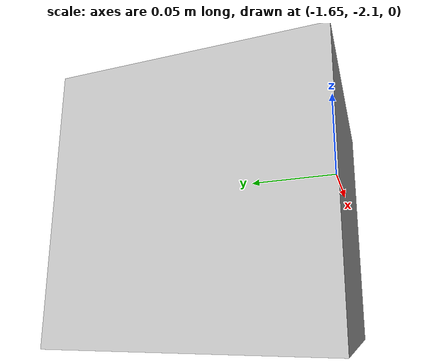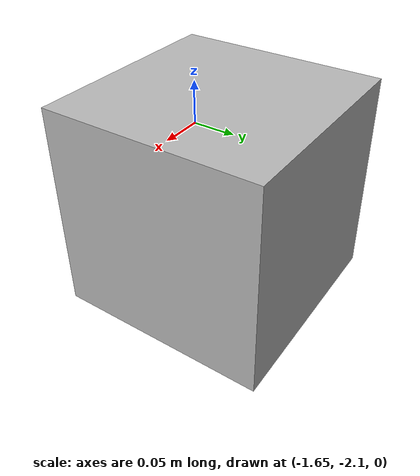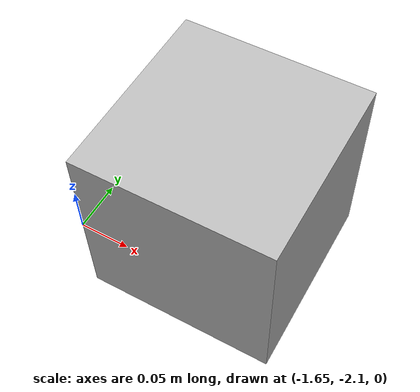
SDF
<?xml version="1.0" ?><sdf version="1.6">
  <model name="qr1">
    <static>true</static>
    <link name="link">
      <visual name="visual">
        <geometry>
          <mesh>
            <uri>model://qr1/meshes/qr1.dae</uri>
          <scale>0.4 0.4 0.4</scale></mesh>
        </geometry>
      </visual>
    </link>
    <pose>-1.55 -2.0 0 0 -0 -1.56</pose>
  </model>
</sdf>
